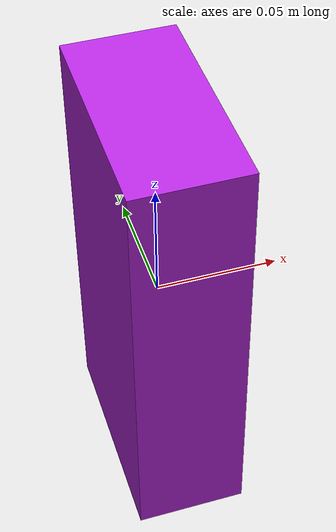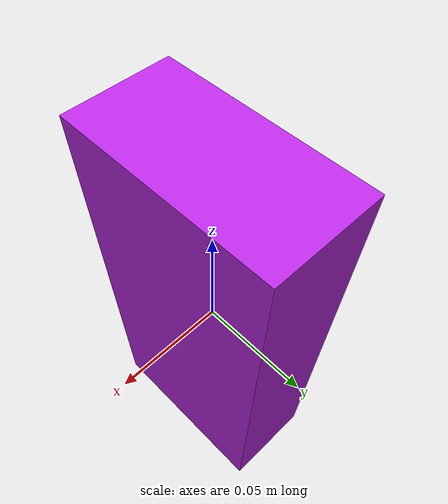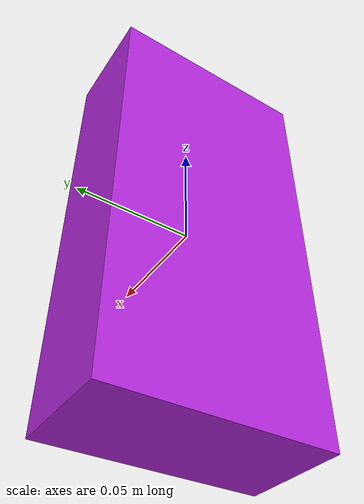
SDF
<?xml version="1.0"?>
<sdf version="1.10">
  <model name="l_workcell_item">
    <static>false</static>
    <allow_auto_disable>false</allow_auto_disable>
    <link name="package">
      <inertial>
        <mass>0.08</mass>
        <inertia>
          <ixx>0.0002767</ixx><iyy>0.0002295</iyy><izz>0.0000675</izz>
          <ixy>0</ixy><ixz>0</ixz><iyz>0</iyz>
        </inertia>
      </inertial>
      <collision name="collision">
        <geometry><box><size>0.045 0.09 0.18</size></box></geometry>
        <surface>
          <friction><ode><mu>1.1</mu><mu2>1.1</mu2></ode></friction>
          <bounce><restitution_coefficient>0.0</restitution_coefficient><threshold>1000</threshold></bounce>
          <contact><ode><kp>200000</kp><kd>40</kd><max_vel>0.02</max_vel><min_depth>0.001</min_depth></ode></contact>
        </surface>
      </collision>
      <visual name="visual">
        <geometry><box><size>0.045 0.09 0.18</size></box></geometry>
        <material><ambient>0.45 0.08 0.58 1</ambient><diffuse>0.72 0.16 0.88 1</diffuse><specular>0.08 0.08 0.08 1</specular></material>
      </visual>
    </link>
  </model>
</sdf>
